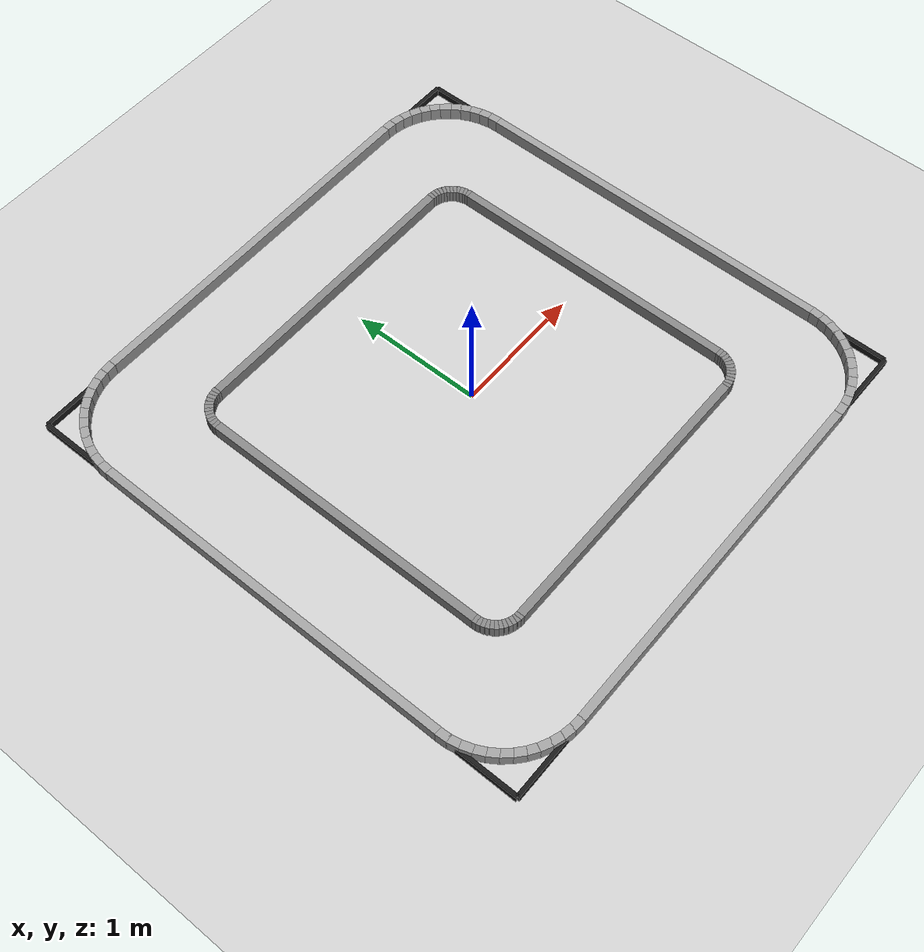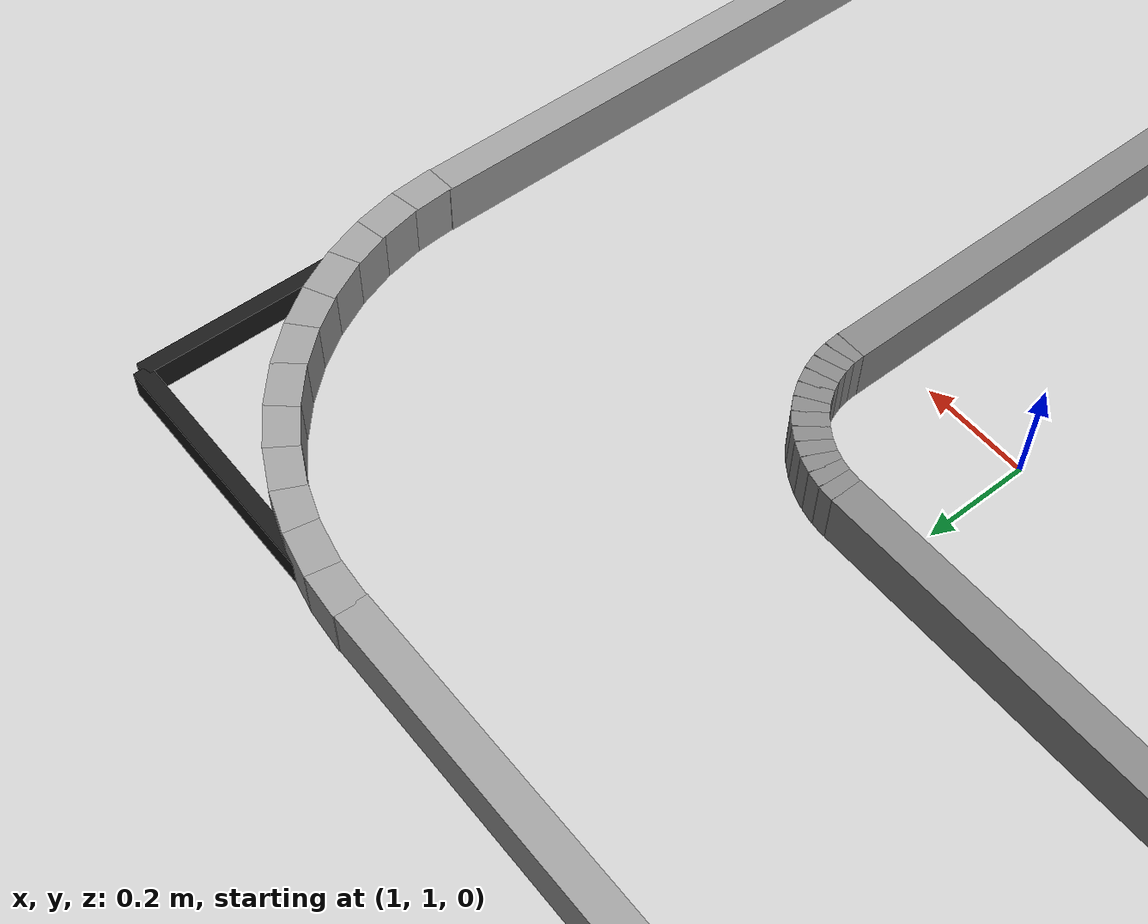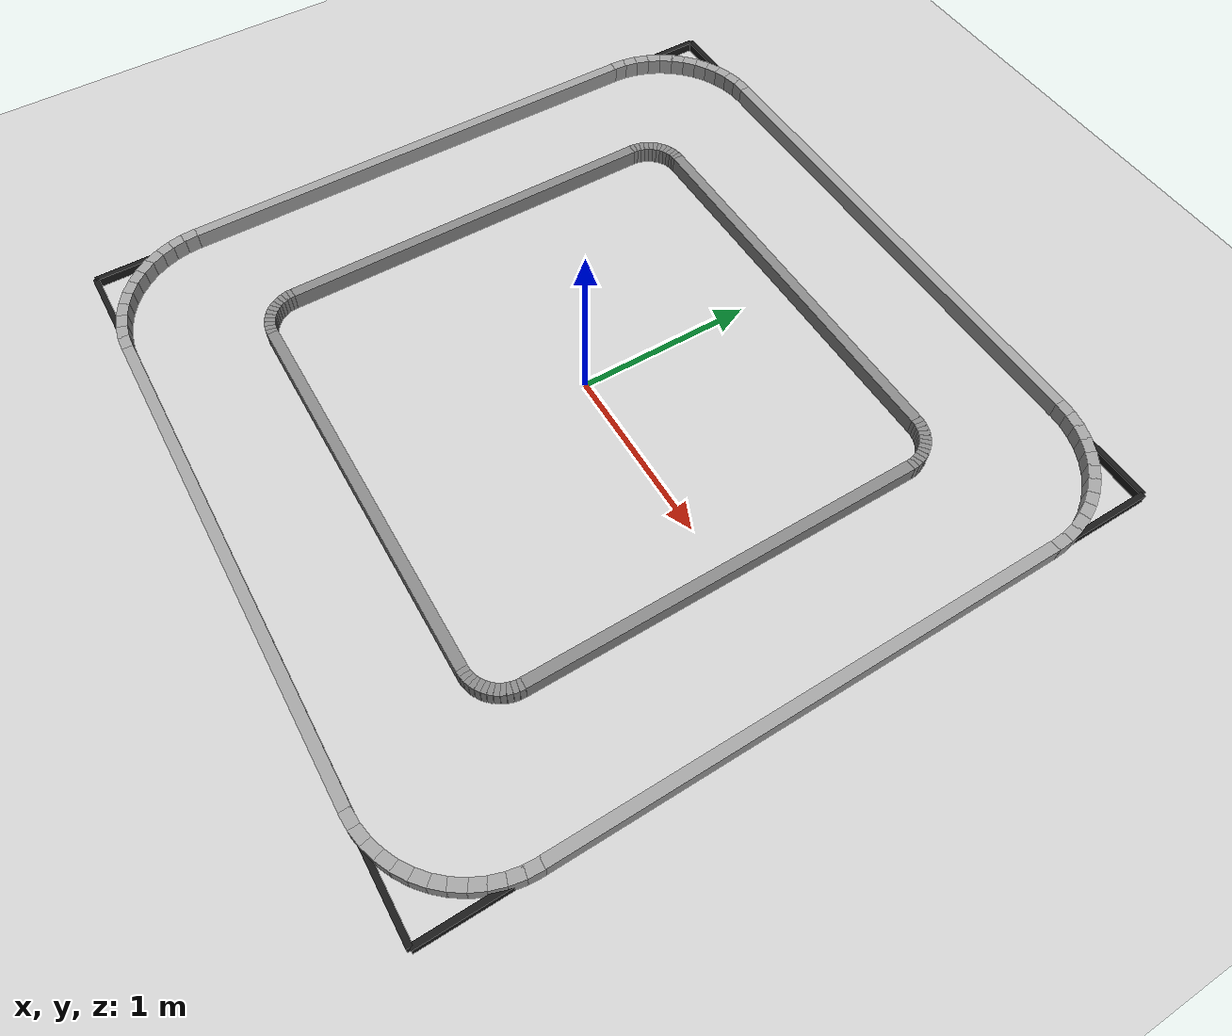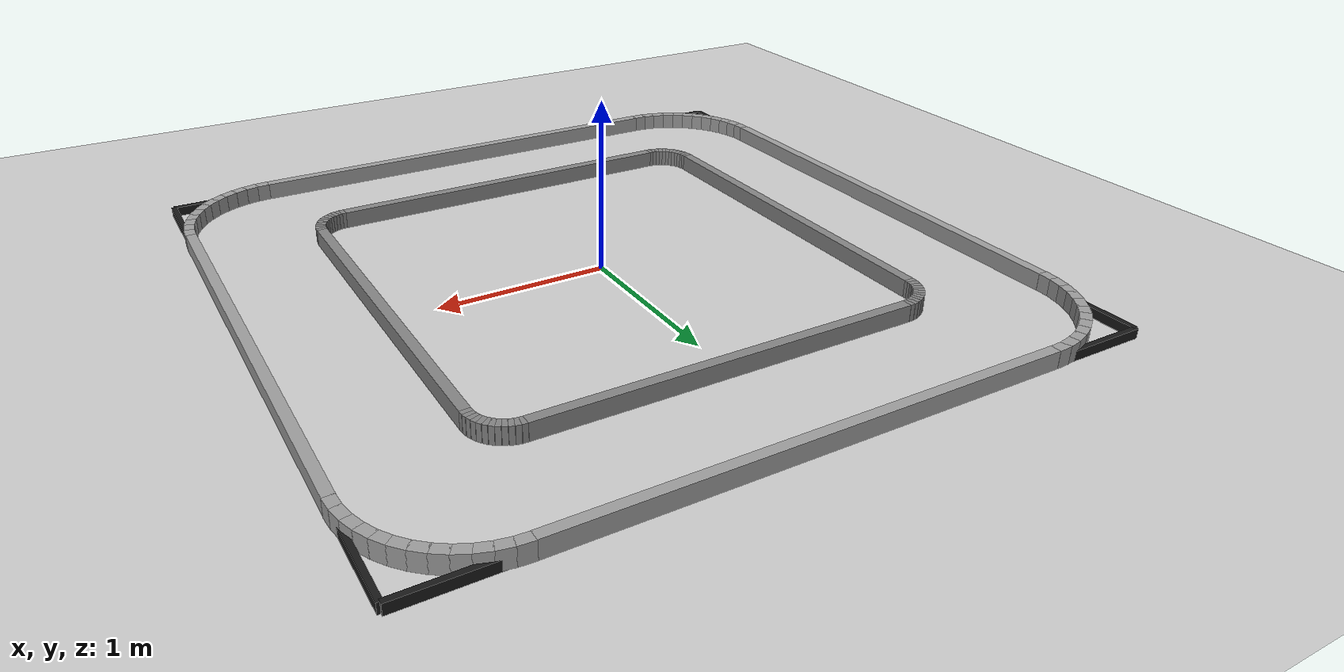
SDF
<?xml version="1.0"?>
<sdf version="1.6">
  <world name="test">
    <light name="sun" type="directional">
      <cast_shadows>1</cast_shadows><pose>0 0 10 0 0 0</pose>
      <diffuse>0.8 0.8 0.8 1</diffuse><specular>0.2 0.2 0.2 1</specular>
      <attenuation><range>1000</range><constant>0.9</constant><linear>0.01</linear><quadratic>0.001</quadratic></attenuation>
      <direction>-0.5 0.1 -0.9</direction>
    </light>
    <include><uri>model://ground_plane</uri></include>

    <model name="boundary_line">
      <static>true</static>
      <link name="n"><pose>0 2.0 0.001 0 0 0</pose><visual name="v"><geometry><box><size>4.0 0.03 0.10</size></box></geometry><material><ambient>0.1 0.1 0.1 1</ambient></material></visual></link>
      <link name="s"><pose>0 -2.0 0.001 0 0 0</pose><visual name="v"><geometry><box><size>4.0 0.03 0.10</size></box></geometry><material><ambient>0.1 0.1 0.1 1</ambient></material></visual></link>
      <link name="e"><pose>2.0 0 0.001 0 0 0</pose><visual name="v"><geometry><box><size>0.03 4.0 0.10</size></box></geometry><material><ambient>0.1 0.1 0.1 1</ambient></material></visual></link>
      <link name="w"><pose>-2.0 0 0.001 0 0 0</pose><visual name="v"><geometry><box><size>0.03 4.0 0.10</size></box></geometry><material><ambient>0.1 0.1 0.1 1</ambient></material></visual></link>
    </model>

    <model name="track_outer">
      <static>true</static>
      <link name="top"><pose>0 2.0 0.050 0 0 0</pose>
        <visual name="v"><geometry><box><size>2.80 0.060 0.10</size></box></geometry><material><ambient>0.62 0.62 0.62 1</ambient></material></visual>
        <collision name="c"><geometry><box><size>2.80 0.060 0.10</size></box></geometry></collision></link>
      <link name="bottom"><pose>0 -2.0 0.050 0 0 0</pose>
        <visual name="v"><geometry><box><size>2.80 0.060 0.10</size></box></geometry><material><ambient>0.62 0.62 0.62 1</ambient></material></visual>
        <collision name="c"><geometry><box><size>2.80 0.060 0.10</size></box></geometry></collision></link>
      <link name="left"><pose>-2.0 0 0.050 0 0 0</pose>
        <visual name="v"><geometry><box><size>0.060 2.80 0.10</size></box></geometry><material><ambient>0.62 0.62 0.62 1</ambient></material></visual>
        <collision name="c"><geometry><box><size>0.060 2.80 0.10</size></box></geometry></collision></link>
      <link name="right"><pose>2.0 0 0.050 0 0 0</pose>
        <visual name="v"><geometry><box><size>0.060 2.80 0.10</size></box></geometry><material><ambient>0.62 0.62 0.62 1</ambient></material></visual>
        <collision name="c"><geometry><box><size>0.060 2.80 0.10</size></box></geometry></collision></link>
      <link name="tr0">
        <pose>1.9987 1.4392 0.050 0 0 1.6362</pose>
        <visual name="v"><geometry><box><size>0.0848 0.060 0.10</size></box></geometry>
        <material><ambient>0.62 0.62 0.62 1</ambient></material></visual>
        <collision name="c"><geometry><box><size>0.0848 0.060 0.10</size></box></geometry></collision>
      </link>
      <link name="tr1">
        <pose>1.9885 1.5171 0.050 0 0 1.7671</pose>
        <visual name="v"><geometry><box><size>0.0848 0.060 0.10</size></box></geometry>
        <material><ambient>0.62 0.62 0.62 1</ambient></material></visual>
        <collision name="c"><geometry><box><size>0.0848 0.060 0.10</size></box></geometry></collision>
      </link>
      <link name="tr2">
        <pose>1.9682 1.5929 0.050 0 0 1.8980</pose>
        <visual name="v"><geometry><box><size>0.0848 0.060 0.10</size></box></geometry>
        <material><ambient>0.62 0.62 0.62 1</ambient></material></visual>
        <collision name="c"><geometry><box><size>0.0848 0.060 0.10</size></box></geometry></collision>
      </link>
      <link name="tr3">
        <pose>1.9381 1.6654 0.050 0 0 2.0289</pose>
        <visual name="v"><geometry><box><size>0.0848 0.060 0.10</size></box></geometry>
        <material><ambient>0.62 0.62 0.62 1</ambient></material></visual>
        <collision name="c"><geometry><box><size>0.0848 0.060 0.10</size></box></geometry></collision>
      </link>
      <link name="tr4">
        <pose>1.8989 1.7333 0.050 0 0 2.1598</pose>
        <visual name="v"><geometry><box><size>0.0848 0.060 0.10</size></box></geometry>
        <material><ambient>0.62 0.62 0.62 1</ambient></material></visual>
        <collision name="c"><geometry><box><size>0.0848 0.060 0.10</size></box></geometry></collision>
      </link>
      <link name="tr5">
        <pose>1.8511 1.7956 0.050 0 0 2.2907</pose>
        <visual name="v"><geometry><box><size>0.0848 0.060 0.10</size></box></geometry>
        <material><ambient>0.62 0.62 0.62 1</ambient></material></visual>
        <collision name="c"><geometry><box><size>0.0848 0.060 0.10</size></box></geometry></collision>
      </link>
      <link name="tr6">
        <pose>1.7956 1.8511 0.050 0 0 2.4216</pose>
        <visual name="v"><geometry><box><size>0.0848 0.060 0.10</size></box></geometry>
        <material><ambient>0.62 0.62 0.62 1</ambient></material></visual>
        <collision name="c"><geometry><box><size>0.0848 0.060 0.10</size></box></geometry></collision>
      </link>
      <link name="tr7">
        <pose>1.7333 1.8989 0.050 0 0 2.5525</pose>
        <visual name="v"><geometry><box><size>0.0848 0.060 0.10</size></box></geometry>
        <material><ambient>0.62 0.62 0.62 1</ambient></material></visual>
        <collision name="c"><geometry><box><size>0.0848 0.060 0.10</size></box></geometry></collision>
      </link>
      <link name="tr8">
        <pose>1.6654 1.9381 0.050 0 0 2.6834</pose>
        <visual name="v"><geometry><box><size>0.0848 0.060 0.10</size></box></geometry>
        <material><ambient>0.62 0.62 0.62 1</ambient></material></visual>
        <collision name="c"><geometry><box><size>0.0848 0.060 0.10</size></box></geometry></collision>
      </link>
      <link name="tr9">
        <pose>1.5929 1.9682 0.050 0 0 2.8143</pose>
        <visual name="v"><geometry><box><size>0.0848 0.060 0.10</size></box></geometry>
        <material><ambient>0.62 0.62 0.62 1</ambient></material></visual>
        <collision name="c"><geometry><box><size>0.0848 0.060 0.10</size></box></geometry></collision>
      </link>
      <link name="tr10">
        <pose>1.5171 1.9885 0.050 0 0 2.9452</pose>
        <visual name="v"><geometry><box><size>0.0848 0.060 0.10</size></box></geometry>
        <material><ambient>0.62 0.62 0.62 1</ambient></material></visual>
        <collision name="c"><geometry><box><size>0.0848 0.060 0.10</size></box></geometry></collision>
      </link>
      <link name="tr11">
        <pose>1.4392 1.9987 0.050 0 0 3.0761</pose>
        <visual name="v"><geometry><box><size>0.0848 0.060 0.10</size></box></geometry>
        <material><ambient>0.62 0.62 0.62 1</ambient></material></visual>
        <collision name="c"><geometry><box><size>0.0848 0.060 0.10</size></box></geometry></collision>
      </link>
      <link name="tl0">
        <pose>-1.4392 1.9987 0.050 0 0 3.2070</pose>
        <visual name="v"><geometry><box><size>0.0848 0.060 0.10</size></box></geometry>
        <material><ambient>0.62 0.62 0.62 1</ambient></material></visual>
        <collision name="c"><geometry><box><size>0.0848 0.060 0.10</size></box></geometry></collision>
      </link>
      <link name="tl1">
        <pose>-1.5171 1.9885 0.050 0 0 3.3379</pose>
        <visual name="v"><geometry><box><size>0.0848 0.060 0.10</size></box></geometry>
        <material><ambient>0.62 0.62 0.62 1</ambient></material></visual>
        <collision name="c"><geometry><box><size>0.0848 0.060 0.10</size></box></geometry></collision>
      </link>
      <link name="tl2">
        <pose>-1.5929 1.9682 0.050 0 0 3.4688</pose>
        <visual name="v"><geometry><box><size>0.0848 0.060 0.10</size></box></geometry>
        <material><ambient>0.62 0.62 0.62 1</ambient></material></visual>
        <collision name="c"><geometry><box><size>0.0848 0.060 0.10</size></box></geometry></collision>
      </link>
      <link name="tl3">
        <pose>-1.6654 1.9381 0.050 0 0 3.5997</pose>
        <visual name="v"><geometry><box><size>0.0848 0.060 0.10</size></box></geometry>
        <material><ambient>0.62 0.62 0.62 1</ambient></material></visual>
        <collision name="c"><geometry><box><size>0.0848 0.060 0.10</size></box></geometry></collision>
      </link>
      <link name="tl4">
        <pose>-1.7333 1.8989 0.050 0 0 3.7306</pose>
        <visual name="v"><geometry><box><size>0.0848 0.060 0.10</size></box></geometry>
        <material><ambient>0.62 0.62 0.62 1</ambient></material></visual>
        <collision name="c"><geometry><box><size>0.0848 0.060 0.10</size></box></geometry></collision>
      </link>
      <link name="tl5">
        <pose>-1.7956 1.8511 0.050 0 0 3.8615</pose>
        <visual name="v"><geometry><box><size>0.0848 0.060 0.10</size></box></geometry>
        <material><ambient>0.62 0.62 0.62 1</ambient></material></visual>
        <collision name="c"><geometry><box><size>0.0848 0.060 0.10</size></box></geometry></collision>
      </link>
      <link name="tl6">
        <pose>-1.8511 1.7956 0.050 0 0 3.9924</pose>
        <visual name="v"><geometry><box><size>0.0848 0.060 0.10</size></box></geometry>
        <material><ambient>0.62 0.62 0.62 1</ambient></material></visual>
        <collision name="c"><geometry><box><size>0.0848 0.060 0.10</size></box></geometry></collision>
      </link>
      <link name="tl7">
        <pose>-1.8989 1.7333 0.050 0 0 4.1233</pose>
        <visual name="v"><geometry><box><size>0.0848 0.060 0.10</size></box></geometry>
        <material><ambient>0.62 0.62 0.62 1</ambient></material></visual>
        <collision name="c"><geometry><box><size>0.0848 0.060 0.10</size></box></geometry></collision>
      </link>
      <link name="tl8">
        <pose>-1.9381 1.6654 0.050 0 0 4.2542</pose>
        <visual name="v"><geometry><box><size>0.0848 0.060 0.10</size></box></geometry>
        <material><ambient>0.62 0.62 0.62 1</ambient></material></visual>
        <collision name="c"><geometry><box><size>0.0848 0.060 0.10</size></box></geometry></collision>
      </link>
      <link name="tl9">
        <pose>-1.9682 1.5929 0.050 0 0 4.3851</pose>
        <visual name="v"><geometry><box><size>0.0848 0.060 0.10</size></box></geometry>
        <material><ambient>0.62 0.62 0.62 1</ambient></material></visual>
        <collision name="c"><geometry><box><size>0.0848 0.060 0.10</size></box></geometry></collision>
      </link>
      <link name="tl10">
        <pose>-1.9885 1.5171 0.050 0 0 4.5160</pose>
        <visual name="v"><geometry><box><size>0.0848 0.060 0.10</size></box></geometry>
        <material><ambient>0.62 0.62 0.62 1</ambient></material></visual>
        <collision name="c"><geometry><box><size>0.0848 0.060 0.10</size></box></geometry></collision>
      </link>
      <link name="tl11">
        <pose>-1.9987 1.4392 0.050 0 0 4.6469</pose>
        <visual name="v"><geometry><box><size>0.0848 0.060 0.10</size></box></geometry>
        <material><ambient>0.62 0.62 0.62 1</ambient></material></visual>
        <collision name="c"><geometry><box><size>0.0848 0.060 0.10</size></box></geometry></collision>
      </link>
      <link name="bl0">
        <pose>-1.9987 -1.4392 0.050 0 0 4.7778</pose>
        <visual name="v"><geometry><box><size>0.0848 0.060 0.10</size></box></geometry>
        <material><ambient>0.62 0.62 0.62 1</ambient></material></visual>
        <collision name="c"><geometry><box><size>0.0848 0.060 0.10</size></box></geometry></collision>
      </link>
      <link name="bl1">
        <pose>-1.9885 -1.5171 0.050 0 0 4.9087</pose>
        <visual name="v"><geometry><box><size>0.0848 0.060 0.10</size></box></geometry>
        <material><ambient>0.62 0.62 0.62 1</ambient></material></visual>
        <collision name="c"><geometry><box><size>0.0848 0.060 0.10</size></box></geometry></collision>
      </link>
      <link name="bl2">
        <pose>-1.9682 -1.5929 0.050 0 0 5.0396</pose>
        <visual name="v"><geometry><box><size>0.0848 0.060 0.10</size></box></geometry>
        <material><ambient>0.62 0.62 0.62 1</ambient></material></visual>
        <collision name="c"><geometry><box><size>0.0848 0.060 0.10</size></box></geometry></collision>
      </link>
      <link name="bl3">
        <pose>-1.9381 -1.6654 0.050 0 0 5.1705</pose>
        <visual name="v"><geometry><box><size>0.0848 0.060 0.10</size></box></geometry>
        <material><ambient>0.62 0.62 0.62 1</ambient></material></visual>
        <collision name="c"><geometry><box><size>0.0848 0.060 0.10</size></box></geometry></collision>
      </link>
      <link name="bl4">
        <pose>-1.8989 -1.7333 0.050 0 0 5.3014</pose>
        <visual name="v"><geometry><box><size>0.0848 0.060 0.10</size></box></geometry>
        <material><ambient>0.62 0.62 0.62 1</ambient></material></visual>
        <collision name="c"><geometry><box><size>0.0848 0.060 0.10</size></box></geometry></collision>
      </link>
      <link name="bl5">
        <pose>-1.8511 -1.7956 0.050 0 0 5.4323</pose>
        <visual name="v"><geometry><box><size>0.0848 0.060 0.10</size></box></geometry>
        <material><ambient>0.62 0.62 0.62 1</ambient></material></visual>
        <collision name="c"><geometry><box><size>0.0848 0.060 0.10</size></box></geometry></collision>
      </link>
      <link name="bl6">
        <pose>-1.7956 -1.8511 0.050 0 0 5.5632</pose>
        <visual name="v"><geometry><box><size>0.0848 0.060 0.10</size></box></geometry>
        <material><ambient>0.62 0.62 0.62 1</ambient></material></visual>
        <collision name="c"><geometry><box><size>0.0848 0.060 0.10</size></box></geometry></collision>
      </link>
      <link name="bl7">
        <pose>-1.7333 -1.8989 0.050 0 0 5.6941</pose>
        <visual name="v"><geometry><box><size>0.0848 0.060 0.10</size></box></geometry>
        <material><ambient>0.62 0.62 0.62 1</ambient></material></visual>
        <collision name="c"><geometry><box><size>0.0848 0.060 0.10</size></box></geometry></collision>
      </link>
      <link name="bl8">
        <pose>-1.6654 -1.9381 0.050 0 0 5.8250</pose>
        <visual name="v"><geometry><box><size>0.0848 0.060 0.10</size></box></geometry>
        <material><ambient>0.62 0.62 0.62 1</ambient></material></visual>
        <collision name="c"><geometry><box><size>0.0848 0.060 0.10</size></box></geometry></collision>
      </link>
      <link name="bl9">
        <pose>-1.5929 -1.9682 0.050 0 0 5.9559</pose>
        <visual name="v"><geometry><box><size>0.0848 0.060 0.10</size></box></geometry>
        <material><ambient>0.62 0.62 0.62 1</ambient></material></visual>
        <collision name="c"><geometry><box><size>0.0848 0.060 0.10</size></box></geometry></collision>
      </link>
      <link name="bl10">
        <pose>-1.5171 -1.9885 0.050 0 0 6.0868</pose>
        <visual name="v"><geometry><box><size>0.0848 0.060 0.10</size></box></geometry>
        <material><ambient>0.62 0.62 0.62 1</ambient></material></visual>
        <collision name="c"><geometry><box><size>0.0848 0.060 0.10</size></box></geometry></collision>
      </link>
      <link name="bl11">
        <pose>-1.4392 -1.9987 0.050 0 0 6.2177</pose>
        <visual name="v"><geometry><box><size>0.0848 0.060 0.10</size></box></geometry>
        <material><ambient>0.62 0.62 0.62 1</ambient></material></visual>
        <collision name="c"><geometry><box><size>0.0848 0.060 0.10</size></box></geometry></collision>
      </link>
      <link name="br0">
        <pose>1.4392 -1.9987 0.050 0 0 6.3486</pose>
        <visual name="v"><geometry><box><size>0.0848 0.060 0.10</size></box></geometry>
        <material><ambient>0.62 0.62 0.62 1</ambient></material></visual>
        <collision name="c"><geometry><box><size>0.0848 0.060 0.10</size></box></geometry></collision>
      </link>
      <link name="br1">
        <pose>1.5171 -1.9885 0.050 0 0 6.4795</pose>
        <visual name="v"><geometry><box><size>0.0848 0.060 0.10</size></box></geometry>
        <material><ambient>0.62 0.62 0.62 1</ambient></material></visual>
        <collision name="c"><geometry><box><size>0.0848 0.060 0.10</size></box></geometry></collision>
      </link>
      <link name="br2">
        <pose>1.5929 -1.9682 0.050 0 0 6.6104</pose>
        <visual name="v"><geometry><box><size>0.0848 0.060 0.10</size></box></geometry>
        <material><ambient>0.62 0.62 0.62 1</ambient></material></visual>
        <collision name="c"><geometry><box><size>0.0848 0.060 0.10</size></box></geometry></collision>
      </link>
      <link name="br3">
        <pose>1.6654 -1.9381 0.050 0 0 6.7413</pose>
        <visual name="v"><geometry><box><size>0.0848 0.060 0.10</size></box></geometry>
        <material><ambient>0.62 0.62 0.62 1</ambient></material></visual>
        <collision name="c"><geometry><box><size>0.0848 0.060 0.10</size></box></geometry></collision>
      </link>
      <link name="br4">
        <pose>1.7333 -1.8989 0.050 0 0 6.8722</pose>
        <visual name="v"><geometry><box><size>0.0848 0.060 0.10</size></box></geometry>
        <material><ambient>0.62 0.62 0.62 1</ambient></material></visual>
        <collision name="c"><geometry><box><size>0.0848 0.060 0.10</size></box></geometry></collision>
      </link>
      <link name="br5">
        <pose>1.7956 -1.8511 0.050 0 0 7.0031</pose>
        <visual name="v"><geometry><box><size>0.0848 0.060 0.10</size></box></geometry>
        <material><ambient>0.62 0.62 0.62 1</ambient></material></visual>
        <collision name="c"><geometry><box><size>0.0848 0.060 0.10</size></box></geometry></collision>
      </link>
      <link name="br6">
        <pose>1.8511 -1.7956 0.050 0 0 7.1340</pose>
        <visual name="v"><geometry><box><size>0.0848 0.060 0.10</size></box></geometry>
        <material><ambient>0.62 0.62 0.62 1</ambient></material></visual>
        <collision name="c"><geometry><box><size>0.0848 0.060 0.10</size></box></geometry></collision>
      </link>
      <link name="br7">
        <pose>1.8989 -1.7333 0.050 0 0 7.2649</pose>
        <visual name="v"><geometry><box><size>0.0848 0.060 0.10</size></box></geometry>
        <material><ambient>0.62 0.62 0.62 1</ambient></material></visual>
        <collision name="c"><geometry><box><size>0.0848 0.060 0.10</size></box></geometry></collision>
      </link>
      <link name="br8">
        <pose>1.9381 -1.6654 0.050 0 0 7.3958</pose>
        <visual name="v"><geometry><box><size>0.0848 0.060 0.10</size></box></geometry>
        <material><ambient>0.62 0.62 0.62 1</ambient></material></visual>
        <collision name="c"><geometry><box><size>0.0848 0.060 0.10</size></box></geometry></collision>
      </link>
      <link name="br9">
        <pose>1.9682 -1.5929 0.050 0 0 7.5267</pose>
        <visual name="v"><geometry><box><size>0.0848 0.060 0.10</size></box></geometry>
        <material><ambient>0.62 0.62 0.62 1</ambient></material></visual>
        <collision name="c"><geometry><box><size>0.0848 0.060 0.10</size></box></geometry></collision>
      </link>
      <link name="br10">
        <pose>1.9885 -1.5171 0.050 0 0 7.6576</pose>
        <visual name="v"><geometry><box><size>0.0848 0.060 0.10</size></box></geometry>
        <material><ambient>0.62 0.62 0.62 1</ambient></material></visual>
        <collision name="c"><geometry><box><size>0.0848 0.060 0.10</size></box></geometry></collision>
      </link>
      <link name="br11">
        <pose>1.9987 -1.4392 0.050 0 0 7.7885</pose>
        <visual name="v"><geometry><box><size>0.0848 0.060 0.10</size></box></geometry>
        <material><ambient>0.62 0.62 0.62 1</ambient></material></visual>
        <collision name="c"><geometry><box><size>0.0848 0.060 0.10</size></box></geometry></collision>
      </link>
    </model>

    <model name="track_inner">
      <static>true</static>
      <link name="top"><pose>0 1.3 0.050 0 0 0</pose>
        <visual name="v"><geometry><box><size>2.20 0.060 0.10</size></box></geometry><material><ambient>0.52 0.52 0.52 1</ambient></material></visual>
        <collision name="c"><geometry><box><size>2.20 0.060 0.10</size></box></geometry></collision></link>
      <link name="bottom"><pose>0 -1.3 0.050 0 0 0</pose>
        <visual name="v"><geometry><box><size>2.20 0.060 0.10</size></box></geometry><material><ambient>0.52 0.52 0.52 1</ambient></material></visual>
        <collision name="c"><geometry><box><size>2.20 0.060 0.10</size></box></geometry></collision></link>
      <link name="left"><pose>-1.3 0 0.050 0 0 0</pose>
        <visual name="v"><geometry><box><size>0.060 2.20 0.10</size></box></geometry><material><ambient>0.52 0.52 0.52 1</ambient></material></visual>
        <collision name="c"><geometry><box><size>0.060 2.20 0.10</size></box></geometry></collision></link>
      <link name="right"><pose>1.3 0 0.050 0 0 0</pose>
        <visual name="v"><geometry><box><size>0.060 2.20 0.10</size></box></geometry><material><ambient>0.52 0.52 0.52 1</ambient></material></visual>
        <collision name="c"><geometry><box><size>0.060 2.20 0.10</size></box></geometry></collision></link>
      <link name="itr0">
        <pose>1.2996 1.1131 0.050 0 0 1.6362</pose>
        <visual name="v"><geometry><box><size>0.0283 0.060 0.10</size></box></geometry>
        <material><ambient>0.52 0.52 0.52 1</ambient></material></visual>
        <collision name="c"><geometry><box><size>0.0283 0.060 0.10</size></box></geometry></collision>
      </link>
      <link name="itr1">
        <pose>1.2962 1.1390 0.050 0 0 1.7671</pose>
        <visual name="v"><geometry><box><size>0.0283 0.060 0.10</size></box></geometry>
        <material><ambient>0.52 0.52 0.52 1</ambient></material></visual>
        <collision name="c"><geometry><box><size>0.0283 0.060 0.10</size></box></geometry></collision>
      </link>
      <link name="itr2">
        <pose>1.2894 1.1643 0.050 0 0 1.8980</pose>
        <visual name="v"><geometry><box><size>0.0283 0.060 0.10</size></box></geometry>
        <material><ambient>0.52 0.52 0.52 1</ambient></material></visual>
        <collision name="c"><geometry><box><size>0.0283 0.060 0.10</size></box></geometry></collision>
      </link>
      <link name="itr3">
        <pose>1.2794 1.1885 0.050 0 0 2.0289</pose>
        <visual name="v"><geometry><box><size>0.0283 0.060 0.10</size></box></geometry>
        <material><ambient>0.52 0.52 0.52 1</ambient></material></visual>
        <collision name="c"><geometry><box><size>0.0283 0.060 0.10</size></box></geometry></collision>
      </link>
      <link name="itr4">
        <pose>1.2663 1.2111 0.050 0 0 2.1598</pose>
        <visual name="v"><geometry><box><size>0.0283 0.060 0.10</size></box></geometry>
        <material><ambient>0.52 0.52 0.52 1</ambient></material></visual>
        <collision name="c"><geometry><box><size>0.0283 0.060 0.10</size></box></geometry></collision>
      </link>
      <link name="itr5">
        <pose>1.2504 1.2319 0.050 0 0 2.2907</pose>
        <visual name="v"><geometry><box><size>0.0283 0.060 0.10</size></box></geometry>
        <material><ambient>0.52 0.52 0.52 1</ambient></material></visual>
        <collision name="c"><geometry><box><size>0.0283 0.060 0.10</size></box></geometry></collision>
      </link>
      <link name="itr6">
        <pose>1.2319 1.2504 0.050 0 0 2.4216</pose>
        <visual name="v"><geometry><box><size>0.0283 0.060 0.10</size></box></geometry>
        <material><ambient>0.52 0.52 0.52 1</ambient></material></visual>
        <collision name="c"><geometry><box><size>0.0283 0.060 0.10</size></box></geometry></collision>
      </link>
      <link name="itr7">
        <pose>1.2111 1.2663 0.050 0 0 2.5525</pose>
        <visual name="v"><geometry><box><size>0.0283 0.060 0.10</size></box></geometry>
        <material><ambient>0.52 0.52 0.52 1</ambient></material></visual>
        <collision name="c"><geometry><box><size>0.0283 0.060 0.10</size></box></geometry></collision>
      </link>
      <link name="itr8">
        <pose>1.1885 1.2794 0.050 0 0 2.6834</pose>
        <visual name="v"><geometry><box><size>0.0283 0.060 0.10</size></box></geometry>
        <material><ambient>0.52 0.52 0.52 1</ambient></material></visual>
        <collision name="c"><geometry><box><size>0.0283 0.060 0.10</size></box></geometry></collision>
      </link>
      <link name="itr9">
        <pose>1.1643 1.2894 0.050 0 0 2.8143</pose>
        <visual name="v"><geometry><box><size>0.0283 0.060 0.10</size></box></geometry>
        <material><ambient>0.52 0.52 0.52 1</ambient></material></visual>
        <collision name="c"><geometry><box><size>0.0283 0.060 0.10</size></box></geometry></collision>
      </link>
      <link name="itr10">
        <pose>1.1390 1.2962 0.050 0 0 2.9452</pose>
        <visual name="v"><geometry><box><size>0.0283 0.060 0.10</size></box></geometry>
        <material><ambient>0.52 0.52 0.52 1</ambient></material></visual>
        <collision name="c"><geometry><box><size>0.0283 0.060 0.10</size></box></geometry></collision>
      </link>
      <link name="itr11">
        <pose>1.1131 1.2996 0.050 0 0 3.0761</pose>
        <visual name="v"><geometry><box><size>0.0283 0.060 0.10</size></box></geometry>
        <material><ambient>0.52 0.52 0.52 1</ambient></material></visual>
        <collision name="c"><geometry><box><size>0.0283 0.060 0.10</size></box></geometry></collision>
      </link>
      <link name="itl0">
        <pose>-1.1131 1.2996 0.050 0 0 3.2070</pose>
        <visual name="v"><geometry><box><size>0.0283 0.060 0.10</size></box></geometry>
        <material><ambient>0.52 0.52 0.52 1</ambient></material></visual>
        <collision name="c"><geometry><box><size>0.0283 0.060 0.10</size></box></geometry></collision>
      </link>
      <link name="itl1">
        <pose>-1.1390 1.2962 0.050 0 0 3.3379</pose>
        <visual name="v"><geometry><box><size>0.0283 0.060 0.10</size></box></geometry>
        <material><ambient>0.52 0.52 0.52 1</ambient></material></visual>
        <collision name="c"><geometry><box><size>0.0283 0.060 0.10</size></box></geometry></collision>
      </link>
      <link name="itl2">
        <pose>-1.1643 1.2894 0.050 0 0 3.4688</pose>
        <visual name="v"><geometry><box><size>0.0283 0.060 0.10</size></box></geometry>
        <material><ambient>0.52 0.52 0.52 1</ambient></material></visual>
        <collision name="c"><geometry><box><size>0.0283 0.060 0.10</size></box></geometry></collision>
      </link>
      <link name="itl3">
        <pose>-1.1885 1.2794 0.050 0 0 3.5997</pose>
        <visual name="v"><geometry><box><size>0.0283 0.060 0.10</size></box></geometry>
        <material><ambient>0.52 0.52 0.52 1</ambient></material></visual>
        <collision name="c"><geometry><box><size>0.0283 0.060 0.10</size></box></geometry></collision>
      </link>
      <link name="itl4">
        <pose>-1.2111 1.2663 0.050 0 0 3.7306</pose>
        <visual name="v"><geometry><box><size>0.0283 0.060 0.10</size></box></geometry>
        <material><ambient>0.52 0.52 0.52 1</ambient></material></visual>
        <collision name="c"><geometry><box><size>0.0283 0.060 0.10</size></box></geometry></collision>
      </link>
      <link name="itl5">
        <pose>-1.2319 1.2504 0.050 0 0 3.8615</pose>
        <visual name="v"><geometry><box><size>0.0283 0.060 0.10</size></box></geometry>
        <material><ambient>0.52 0.52 0.52 1</ambient></material></visual>
        <collision name="c"><geometry><box><size>0.0283 0.060 0.10</size></box></geometry></collision>
      </link>
      <link name="itl6">
        <pose>-1.2504 1.2319 0.050 0 0 3.9924</pose>
        <visual name="v"><geometry><box><size>0.0283 0.060 0.10</size></box></geometry>
        <material><ambient>0.52 0.52 0.52 1</ambient></material></visual>
        <collision name="c"><geometry><box><size>0.0283 0.060 0.10</size></box></geometry></collision>
      </link>
      <link name="itl7">
        <pose>-1.2663 1.2111 0.050 0 0 4.1233</pose>
        <visual name="v"><geometry><box><size>0.0283 0.060 0.10</size></box></geometry>
        <material><ambient>0.52 0.52 0.52 1</ambient></material></visual>
        <collision name="c"><geometry><box><size>0.0283 0.060 0.10</size></box></geometry></collision>
      </link>
      <link name="itl8">
        <pose>-1.2794 1.1885 0.050 0 0 4.2542</pose>
        <visual name="v"><geometry><box><size>0.0283 0.060 0.10</size></box></geometry>
        <material><ambient>0.52 0.52 0.52 1</ambient></material></visual>
        <collision name="c"><geometry><box><size>0.0283 0.060 0.10</size></box></geometry></collision>
      </link>
      <link name="itl9">
        <pose>-1.2894 1.1643 0.050 0 0 4.3851</pose>
        <visual name="v"><geometry><box><size>0.0283 0.060 0.10</size></box></geometry>
        <material><ambient>0.52 0.52 0.52 1</ambient></material></visual>
        <collision name="c"><geometry><box><size>0.0283 0.060 0.10</size></box></geometry></collision>
      </link>
      <link name="itl10">
        <pose>-1.2962 1.1390 0.050 0 0 4.5160</pose>
        <visual name="v"><geometry><box><size>0.0283 0.060 0.10</size></box></geometry>
        <material><ambient>0.52 0.52 0.52 1</ambient></material></visual>
        <collision name="c"><geometry><box><size>0.0283 0.060 0.10</size></box></geometry></collision>
      </link>
      <link name="itl11">
        <pose>-1.2996 1.1131 0.050 0 0 4.6469</pose>
        <visual name="v"><geometry><box><size>0.0283 0.060 0.10</size></box></geometry>
        <material><ambient>0.52 0.52 0.52 1</ambient></material></visual>
        <collision name="c"><geometry><box><size>0.0283 0.060 0.10</size></box></geometry></collision>
      </link>
      <link name="ibl0">
        <pose>-1.2996 -1.1131 0.050 0 0 4.7778</pose>
        <visual name="v"><geometry><box><size>0.0283 0.060 0.10</size></box></geometry>
        <material><ambient>0.52 0.52 0.52 1</ambient></material></visual>
        <collision name="c"><geometry><box><size>0.0283 0.060 0.10</size></box></geometry></collision>
      </link>
      <link name="ibl1">
        <pose>-1.2962 -1.1390 0.050 0 0 4.9087</pose>
        <visual name="v"><geometry><box><size>0.0283 0.060 0.10</size></box></geometry>
        <material><ambient>0.52 0.52 0.52 1</ambient></material></visual>
        <collision name="c"><geometry><box><size>0.0283 0.060 0.10</size></box></geometry></collision>
      </link>
      <link name="ibl2">
        <pose>-1.2894 -1.1643 0.050 0 0 5.0396</pose>
        <visual name="v"><geometry><box><size>0.0283 0.060 0.10</size></box></geometry>
        <material><ambient>0.52 0.52 0.52 1</ambient></material></visual>
        <collision name="c"><geometry><box><size>0.0283 0.060 0.10</size></box></geometry></collision>
      </link>
      <link name="ibl3">
        <pose>-1.2794 -1.1885 0.050 0 0 5.1705</pose>
        <visual name="v"><geometry><box><size>0.0283 0.060 0.10</size></box></geometry>
        <material><ambient>0.52 0.52 0.52 1</ambient></material></visual>
        <collision name="c"><geometry><box><size>0.0283 0.060 0.10</size></box></geometry></collision>
      </link>
      <link name="ibl4">
        <pose>-1.2663 -1.2111 0.050 0 0 5.3014</pose>
        <visual name="v"><geometry><box><size>0.0283 0.060 0.10</size></box></geometry>
        <material><ambient>0.52 0.52 0.52 1</ambient></material></visual>
        <collision name="c"><geometry><box><size>0.0283 0.060 0.10</size></box></geometry></collision>
      </link>
      <link name="ibl5">
        <pose>-1.2504 -1.2319 0.050 0 0 5.4323</pose>
        <visual name="v"><geometry><box><size>0.0283 0.060 0.10</size></box></geometry>
        <material><ambient>0.52 0.52 0.52 1</ambient></material></visual>
        <collision name="c"><geometry><box><size>0.0283 0.060 0.10</size></box></geometry></collision>
      </link>
      <link name="ibl6">
        <pose>-1.2319 -1.2504 0.050 0 0 5.5632</pose>
        <visual name="v"><geometry><box><size>0.0283 0.060 0.10</size></box></geometry>
        <material><ambient>0.52 0.52 0.52 1</ambient></material></visual>
        <collision name="c"><geometry><box><size>0.0283 0.060 0.10</size></box></geometry></collision>
      </link>
      <link name="ibl7">
        <pose>-1.2111 -1.2663 0.050 0 0 5.6941</pose>
        <visual name="v"><geometry><box><size>0.0283 0.060 0.10</size></box></geometry>
        <material><ambient>0.52 0.52 0.52 1</ambient></material></visual>
        <collision name="c"><geometry><box><size>0.0283 0.060 0.10</size></box></geometry></collision>
      </link>
      <link name="ibl8">
        <pose>-1.1885 -1.2794 0.050 0 0 5.8250</pose>
        <visual name="v"><geometry><box><size>0.0283 0.060 0.10</size></box></geometry>
        <material><ambient>0.52 0.52 0.52 1</ambient></material></visual>
        <collision name="c"><geometry><box><size>0.0283 0.060 0.10</size></box></geometry></collision>
      </link>
      <link name="ibl9">
        <pose>-1.1643 -1.2894 0.050 0 0 5.9559</pose>
        <visual name="v"><geometry><box><size>0.0283 0.060 0.10</size></box></geometry>
        <material><ambient>0.52 0.52 0.52 1</ambient></material></visual>
        <collision name="c"><geometry><box><size>0.0283 0.060 0.10</size></box></geometry></collision>
      </link>
      <link name="ibl10">
        <pose>-1.1390 -1.2962 0.050 0 0 6.0868</pose>
        <visual name="v"><geometry><box><size>0.0283 0.060 0.10</size></box></geometry>
        <material><ambient>0.52 0.52 0.52 1</ambient></material></visual>
        <collision name="c"><geometry><box><size>0.0283 0.060 0.10</size></box></geometry></collision>
      </link>
      <link name="ibl11">
        <pose>-1.1131 -1.2996 0.050 0 0 6.2177</pose>
        <visual name="v"><geometry><box><size>0.0283 0.060 0.10</size></box></geometry>
        <material><ambient>0.52 0.52 0.52 1</ambient></material></visual>
        <collision name="c"><geometry><box><size>0.0283 0.060 0.10</size></box></geometry></collision>
      </link>
      <link name="ibr0">
        <pose>1.1131 -1.2996 0.050 0 0 6.3486</pose>
        <visual name="v"><geometry><box><size>0.0283 0.060 0.10</size></box></geometry>
        <material><ambient>0.52 0.52 0.52 1</ambient></material></visual>
        <collision name="c"><geometry><box><size>0.0283 0.060 0.10</size></box></geometry></collision>
      </link>
      <link name="ibr1">
        <pose>1.1390 -1.2962 0.050 0 0 6.4795</pose>
        <visual name="v"><geometry><box><size>0.0283 0.060 0.10</size></box></geometry>
        <material><ambient>0.52 0.52 0.52 1</ambient></material></visual>
        <collision name="c"><geometry><box><size>0.0283 0.060 0.10</size></box></geometry></collision>
      </link>
      <link name="ibr2">
        <pose>1.1643 -1.2894 0.050 0 0 6.6104</pose>
        <visual name="v"><geometry><box><size>0.0283 0.060 0.10</size></box></geometry>
        <material><ambient>0.52 0.52 0.52 1</ambient></material></visual>
        <collision name="c"><geometry><box><size>0.0283 0.060 0.10</size></box></geometry></collision>
      </link>
      <link name="ibr3">
        <pose>1.1885 -1.2794 0.050 0 0 6.7413</pose>
        <visual name="v"><geometry><box><size>0.0283 0.060 0.10</size></box></geometry>
        <material><ambient>0.52 0.52 0.52 1</ambient></material></visual>
        <collision name="c"><geometry><box><size>0.0283 0.060 0.10</size></box></geometry></collision>
      </link>
      <link name="ibr4">
        <pose>1.2111 -1.2663 0.050 0 0 6.8722</pose>
        <visual name="v"><geometry><box><size>0.0283 0.060 0.10</size></box></geometry>
        <material><ambient>0.52 0.52 0.52 1</ambient></material></visual>
        <collision name="c"><geometry><box><size>0.0283 0.060 0.10</size></box></geometry></collision>
      </link>
      <link name="ibr5">
        <pose>1.2319 -1.2504 0.050 0 0 7.0031</pose>
        <visual name="v"><geometry><box><size>0.0283 0.060 0.10</size></box></geometry>
        <material><ambient>0.52 0.52 0.52 1</ambient></material></visual>
        <collision name="c"><geometry><box><size>0.0283 0.060 0.10</size></box></geometry></collision>
      </link>
      <link name="ibr6">
        <pose>1.2504 -1.2319 0.050 0 0 7.1340</pose>
        <visual name="v"><geometry><box><size>0.0283 0.060 0.10</size></box></geometry>
        <material><ambient>0.52 0.52 0.52 1</ambient></material></visual>
        <collision name="c"><geometry><box><size>0.0283 0.060 0.10</size></box></geometry></collision>
      </link>
      <link name="ibr7">
        <pose>1.2663 -1.2111 0.050 0 0 7.2649</pose>
        <visual name="v"><geometry><box><size>0.0283 0.060 0.10</size></box></geometry>
        <material><ambient>0.52 0.52 0.52 1</ambient></material></visual>
        <collision name="c"><geometry><box><size>0.0283 0.060 0.10</size></box></geometry></collision>
      </link>
      <link name="ibr8">
        <pose>1.2794 -1.1885 0.050 0 0 7.3958</pose>
        <visual name="v"><geometry><box><size>0.0283 0.060 0.10</size></box></geometry>
        <material><ambient>0.52 0.52 0.52 1</ambient></material></visual>
        <collision name="c"><geometry><box><size>0.0283 0.060 0.10</size></box></geometry></collision>
      </link>
      <link name="ibr9">
        <pose>1.2894 -1.1643 0.050 0 0 7.5267</pose>
        <visual name="v"><geometry><box><size>0.0283 0.060 0.10</size></box></geometry>
        <material><ambient>0.52 0.52 0.52 1</ambient></material></visual>
        <collision name="c"><geometry><box><size>0.0283 0.060 0.10</size></box></geometry></collision>
      </link>
      <link name="ibr10">
        <pose>1.2962 -1.1390 0.050 0 0 7.6576</pose>
        <visual name="v"><geometry><box><size>0.0283 0.060 0.10</size></box></geometry>
        <material><ambient>0.52 0.52 0.52 1</ambient></material></visual>
        <collision name="c"><geometry><box><size>0.0283 0.060 0.10</size></box></geometry></collision>
      </link>
      <link name="ibr11">
        <pose>1.2996 -1.1131 0.050 0 0 7.7885</pose>
        <visual name="v"><geometry><box><size>0.0283 0.060 0.10</size></box></geometry>
        <material><ambient>0.52 0.52 0.52 1</ambient></material></visual>
        <collision name="c"><geometry><box><size>0.0283 0.060 0.10</size></box></geometry></collision>
      </link>
    </model>

    <gravity>0 0 -9.8</gravity>
    <physics name="default_physics" default="0" type="ode"><max_step_size>0.0003</max_step_size><real_time_factor>1</real_time_factor><real_time_update_rate>3333</real_time_update_rate></physics>
    <scene><ambient>0.4 0.4 0.4 1</ambient><background>0.7 0.7 0.7 1</background><shadows>1</shadows></scene>
  </world>
</sdf>
